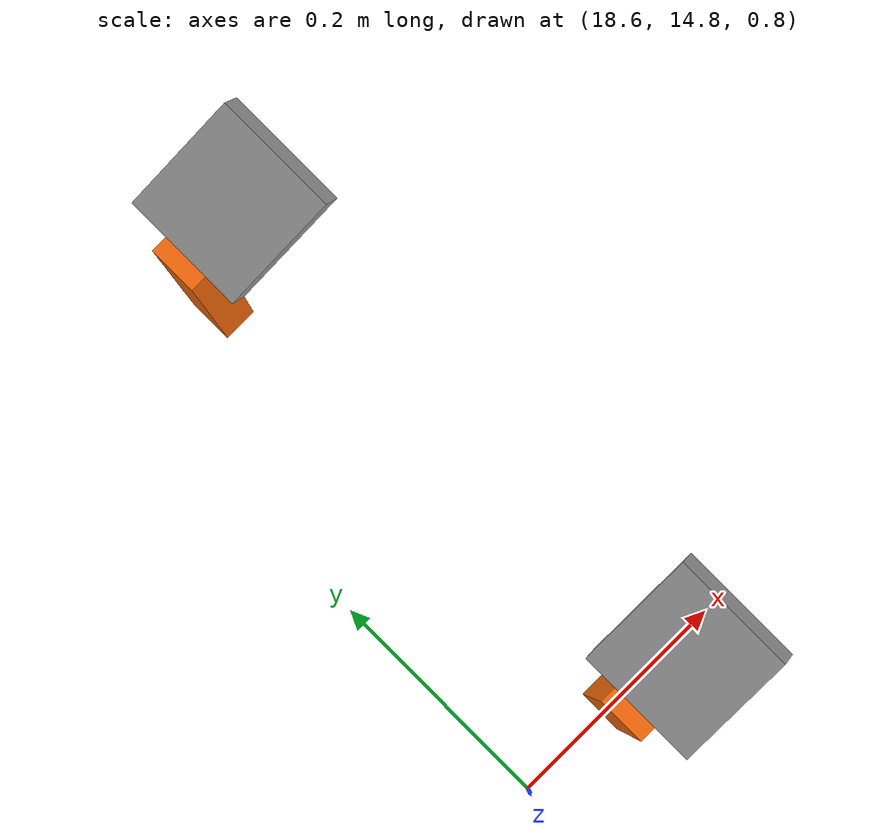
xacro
<?xml version="1.0"?>
<robot name="ai_day_sensors" xmlns:xacro="http://ros.org/wiki/xacro">

  <!-- world reference frame -->
  <link name="world"/>

  <!-- camera looking at the worker assembly process -->
  <xacro:include filename="$(find pbr_gazebo)/urdf/rgb_camera.gazebo.xacro" />
  <xacro:rgb_camera camera_name="worker_cam"/>
  <joint name="world_to_worker_cam" type="fixed">
    <parent link="worker_cam_stick_box"/>
    <child link="worker_cam_box_link"/>
    <origin xyz="0.05 0 0.54" rpy="-2.8 0 -1.57"/>
  </joint>
  <!-- put camera on a stick so that it doesn't look like is flying -->
  <xacro:include filename="$(find pbr_gazebo)/urdf/box.gazebo.xacro" />
  <xacro:box name="worker_cam_stick" width="0.03" length="0.04" height="0.5" color="Black" />
  <joint name="world_to_worker_cam_stick_box" type="fixed">
    <parent link="world"/>
    <child link="worker_cam_stick_box"/>
    <origin xyz="18.7 15.25 0.72" rpy="0 0 0"/>
  </joint>

  <!-- camera looking at the insect hotel parts next to the worker -->
  <xacro:rgb_camera camera_name="parts_cam"/>
  <joint name="world_to_parts_cam" type="fixed">
    <parent link="parts_cam_stick_box"/>
    <child link="parts_cam_box_link"/>
    <origin xyz="0.05 0 0.54" rpy="-2.8 0 -1.57"/>
  </joint>
  <!-- put camera on a stick so that it doesn't look like is flying -->
  <xacro:box name="parts_cam_stick" width="0.03" length="0.04" height="0.5" color="Black" />
  <joint name="world_to_parts_cam_stick_box" type="fixed">
    <parent link="world"/>
    <child link="parts_cam_stick_box"/>
    <origin xyz="18.7 14.8 0.72" rpy="0 0 0"/>
  </joint>

</robot>

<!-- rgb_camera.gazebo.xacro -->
<robot name="camera_robot" xmlns:xacro="http://ros.org/wiki/xacro">

  <xacro:macro name="rgb_camera" params="camera_name">
    <link name="${camera_name}_link">
      <visual>
        <geometry>
          <cylinder length="0.01" radius="0.03"/>
        </geometry>
      </visual>
      <collision>
        <geometry>
          <cylinder length="0.01" radius="0.03"/>
        </geometry>
      </collision>
      <inertial>
        <origin xyz="0 0 0" rpy="0 0 0"/>
        <mass value="0.2"/>
        <inertia ixx="2.2124416e-03" ixy="-1.2294101e-05" ixz="3.4938785e-05"
                 iyy="2.1193702e-03" iyz="-5.0120904e-06"
                 izz="2.0064271e-03" />
      </inertial>
    </link>
    <gazebo reference="${camera_name}_link">
      <material>Gazebo/GreenTransparent</material>
    </gazebo>

    <link name="${camera_name}_box_link">
      <visual>
        <geometry>
          <box size="0.1 0.1 0.03"/>
        </geometry>
      </visual>
      <collision>
        <geometry>
          <box size="0.1 0.1 0.03"/>
        </geometry>
      </collision>
      <inertial>
        <origin xyz="0 0 0" rpy="0 0 0"/>
        <mass value="0.2"/>
        <inertia ixx="2.2124416e-03" ixy="-1.2294101e-05" ixz="3.4938785e-05"
                 iyy="2.1193702e-03" iyz="-5.0120904e-06"
                 izz="2.0064271e-03" />
      </inertial>
    </link>
    <gazebo reference="${camera_name}_box_link">
      <material>Gazebo/Gray</material>
    </gazebo>

    <joint name="${camera_name}_box_link_to_${camera_name}_link" type="fixed">
      <parent link="${camera_name}_box_link"/>
      <child link="${camera_name}_link"/>
      <origin xyz="0 0 0.02" rpy="0 0 0"/>
    </joint>

    <link name="${camera_name}_rgb_optical_frame"/>

    <joint name="${camera_name}_link_to_${camera_name}_rgb_optical_frame" type="fixed">
      <parent link="${camera_name}_link"/>
      <child link="${camera_name}_rgb_optical_frame"/>
      <origin xyz="0 0 0" rpy="0 -1.57 1.57"/>
    </joint>

    <!-- gazebo logical camera -->
    <joint name="${camera_name}_rgb_logical_joint" type="fixed">
      <origin xyz="0 0 0" rpy="0 0 0" />
      <parent link="${camera_name}_rgb_optical_frame" />
      <child link="${camera_name}_rgb_logical_frame" />
    </joint>
    <link name="${camera_name}_rgb_logical_frame"/>

    <gazebo reference="${camera_name}_rgb_logical_frame">
      <sensor name="logical_camera" type="logical_camera">
        <logical_camera>
	  <near>0.05</near>
	  <far>3.50</far>
	  <horizontal_fov>${60.0 * pi/180.0}</horizontal_fov>
	  <aspect_ratio>${640.0/480.0}</aspect_ratio>
        </logical_camera>
        <visualize>false</visualize>
        <always_on>true</always_on>
        <update_rate>10</update_rate>
        <plugin name="logical_camera_plugin" filename="liblogical_camera_plugin.so">
	  <cameraName>${camera_name}</cameraName>
	  <imageTopicName>rgb/logical_image</imageTopicName>
	  <frameName>${camera_name}_rgb_logical_frame</frameName>
        </plugin>
      </sensor>
    </gazebo>

    <link name="${camera_name}_depth_optical_frame"/>

    <joint name="${camera_name}_link_to_${camera_name}_depth_optical_frame" type="fixed">
      <parent link="${camera_name}_link"/>
      <child link="${camera_name}_depth_optical_frame"/>
      <origin xyz="0 0 0" rpy="0 0 0"/>
    </joint>

    <gazebo reference="${camera_name}_rgb_optical_frame">
      <sensor type="depth" name="${camera_name}">
        <always_on>true</always_on>
        <visualize>true</visualize>
        <camera>
            <horizontal_fov>1.22173</horizontal_fov> <!-- Intel realsense L515 fov: 70 deg = 1.22173 rad -->
            <image>
                <!-- Intel realsense L515 up to 1024 x 768, however to reduce computation w select a lower res -->
                <width>640</width>
                <height>480</height>
                <format>B8G8R8</format>
            </image>
            <save enabled="false"/>
        </camera>
        <plugin name="camera_controller" filename="libgazebo_ros_depth_camera.so">
            <alwaysOn>true</alwaysOn>
            <updateRate>10.0</updateRate> <!-- kept low to save resources -->
            <imageTopicName>${camera_name}_image</imageTopicName>
            <cameraInfoTopicName>${camera_name}_info</cameraInfoTopicName>
            <pointCloudTopicName>${camera_name}_pcl</pointCloudTopicName>
            <cameraName>${camera_name}</cameraName>
            <frameName>${camera_name}_depth_optical_frame</frameName>
            <pointCloudCutoff>0.25</pointCloudCutoff> <!-- Min depth distance -->
            <pointCloudCutoffMax>9.0</pointCloudCutoffMax> <!-- Max depth distance -->
            <hackBaseline>0.07</hackBaseline>
            <distortionK1>0.00000001</distortionK1>
            <distortionK2>0.00000001</distortionK2>
            <distortionK3>0.00000001</distortionK3>
            <distortionT1>0.00000001</distortionT1>
            <distortionT2>0.00000001</distortionT2>
        </plugin>
      </sensor>
    </gazebo>

  </xacro:macro>

  <!-- example on how to call this macro -->

</robot>

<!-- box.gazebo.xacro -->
<robot name="box" xmlns:xacro="http://ros.org/wiki/xacro">

  <xacro:macro name="box" params="name width length height cwidth:=0 clength:=0 cheight:=0 color">
    <link name="${name}_box">
      <visual>
        <origin xyz="0 0 ${height/2.0}" rpy="0 0 0"/>
        <geometry>
          <box size="${width} ${length} ${height}"/>
        </geometry>
        <material name="orange"> <!-- rviz will use this color -->
          <color rgba="${255/255} ${108/255} ${10/255} 1.0"/>
        </material>
      </visual>
      <collision>
        <origin xyz="0 0 ${cheight/2.0}" rpy="0 0 0"/>
        <geometry>
          <box size="${cwidth} ${clength} ${cheight}"/>
        </geometry>
      </collision>
      <inertial>
        <origin xyz="0 0 0" rpy="0 0 0"/>
        <mass value="0.2"/>
        <inertia ixx="2.2124416e-03" ixy="-1.2294101e-05" ixz="3.4938785e-05"
                iyy="2.1193702e-03" iyz="-5.0120904e-06"
                izz="2.0064271e-03" />
      </inertial>
    </link>
    <gazebo reference="${name}_box">
      <material>Gazebo/${color}</material> <!-- gazebo will use this color -->
    </gazebo>
  </xacro:macro>

  <!-- example on how to call this macro -->

</robot>
